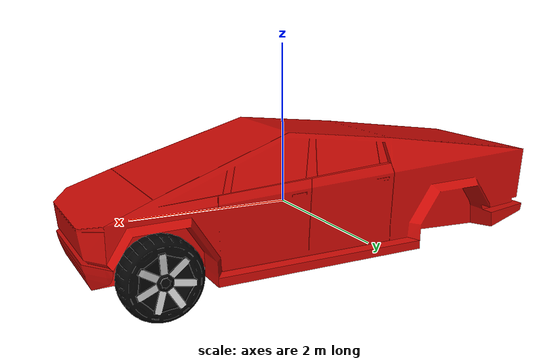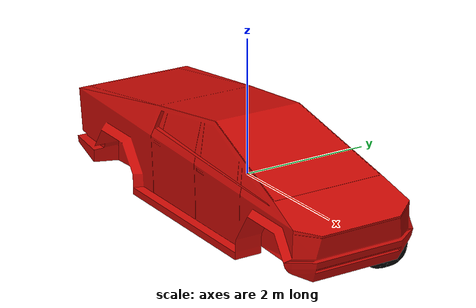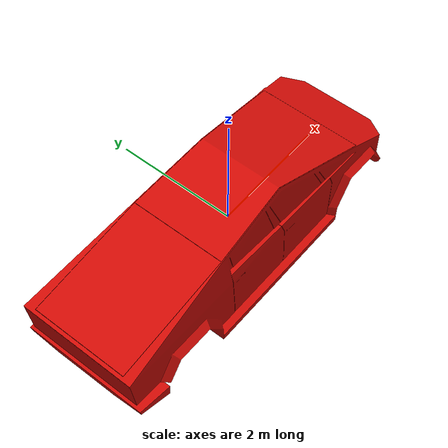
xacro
<?xml version="1.0"?>
<robot name="cybertruck" xmlns:xacro="http://www.ros.org/wiki/xacro">

  <material name="Material"><color rgba="0.80000 0.03922 0.01961 1.00000"/></material>
  <material name="Material.003"><color rgba="0.80000 0.80000 0.80000 1.00000"/></material>
  <material name="Material.004"><color rgba="0.80000 0.80000 0.80000 1.00000"/></material>
  <material name="Material.005"><color rgba="0.80000 0.80000 0.80000 1.00000"/></material>
  <material name="Material.006"><color rgba="0.80000 0.80000 0.80000 1.00000"/></material>

  <xacro:property name="wheel_mass"  value="1.0"/>
  <xacro:property name="wheel_length"  value="0.41712"/>
  <xacro:property name="wheel_radius"  value="0.47736"/>

  <xacro:macro name="wheel" params="prefix wheel_type visual_rpy *origin *axis">
    <link name="${prefix}_wheel_link">
      <visual>
        <origin rpy= "${visual_rpy}" xyz="0.00000 0.00000 0.00000"/>
        <geometry>
          <mesh filename="package://cybertruck_description/meshes/dae/${wheel_type}.dae" scale="1.00000 1.00000 1.00000"/>
        </geometry>
      </visual>
      <collision>
        <geometry><cylinder length="${wheel_length}" radius="${wheel_radius}"/></geometry>
      </collision>
      <inertial>
        <mass value="${wheel_mass}"/>
        <inertia ixx="${(1/12) * wheel_mass * (3*wheel_radius*wheel_radius + wheel_length*wheel_length)}" ixy="0" ixz="0"
          iyy="${(1/12) * wheel_mass * (3*wheel_radius*wheel_radius + wheel_length*wheel_length)}" iyz="0"
          izz="${(1/2) * wheel_mass * (wheel_radius*wheel_radius)}"/>
      </inertial>
    </link>

    <!--바퀴 joint는 diff_drvie 플러그 연동됨으로 확인 필요함-->
    <joint name="${prefix}_wheel" type="continuous">
      <parent link="base_link"/>
      <child link="${prefix}_wheel_link"/>

      <xacro:insert_block name="origin"/>
      <xacro:insert_block name="axis"/>

      <dynamics damping="0.0" friction="20"/>
    </joint>
    <!-- 가제보 연결 필요함 -->
  </xacro:macro>

  <xacro:wheel prefix="front_left" wheel_type="FL_Circle.009" visual_rpy="1.52912 0.00239 3.12352">
      <origin rpy="1.57080 0.00000 3.14159" xyz="1.92193 0.91457 -0.66346"/>
      <axis xyz="0.0 0.0 1.0"/>
  </xacro:wheel>

  <link name="base_footprint"/>
  <link name="base_link">
    <collision name="Body_Plane.001_collision">
      <origin rpy="0.00000 0.00000 0.00000" xyz="-0.21983 -0.00642 0.02146"/>
      <geometry>
        <box size="5.89247 2.16472 1.53486"/>
      </geometry>
    </collision>
    <inertial>
      <inertia ixx="15.12791" ixy="0.00000" ixz="0.00000" iyy="77.69248" iyz="0.00000" izz="82.10694"/>
      <origin rpy="0.00000 0.00000 0.00000" xyz="-0.21983 -0.00642 -0.03121"/>
      <mass value="25.00000"/>
    </inertial>
    <visual name="Body_Plane.001">
      <material name="Material"/>
      <origin rpy="0.00000 0.00000 0.00000" xyz="0.00000 0.00000 0.00000"/>
      <geometry>
        <mesh filename="package://cybertruck_description/meshes/dae/Body_Plane.001.dae" scale="1.00000 1.00000 1.00000"/>
      </geometry>
    </visual>
  </link>
  <joint name="base_joint" type="fixed">
      <parent link="base_footprint"/>
      <child link="base_link"/>
      <origin xyz="0 0 0.2352" rpy="0 0 0"/>
  </joint>

</robot>
